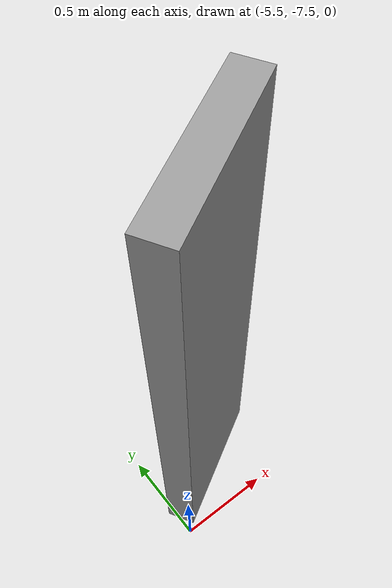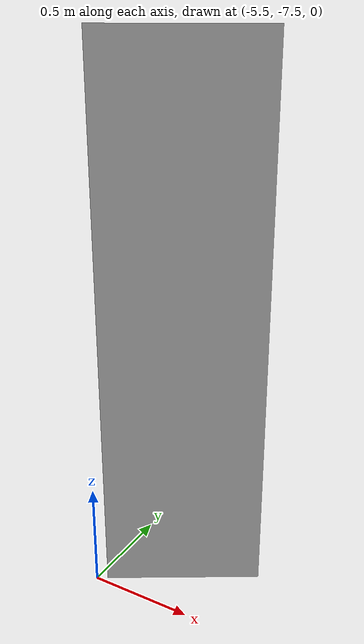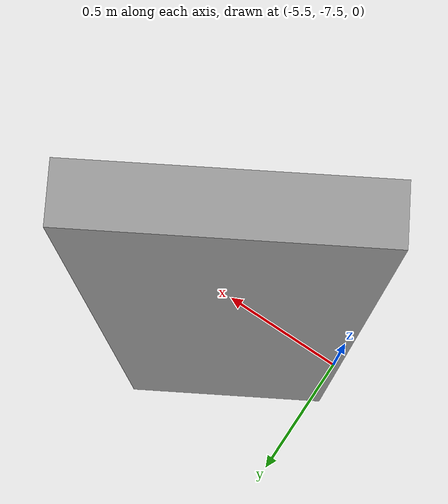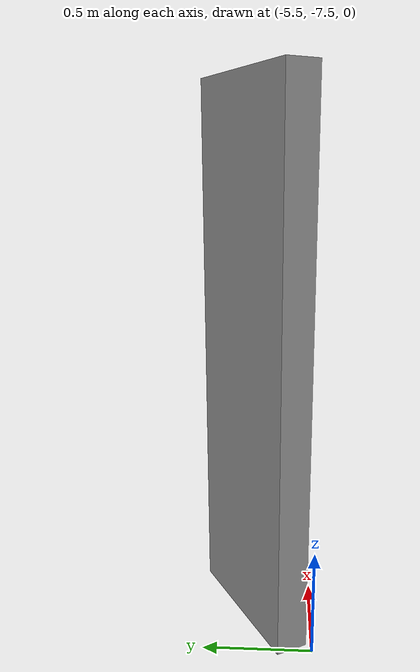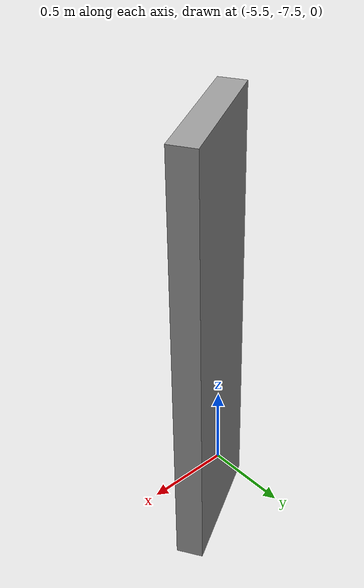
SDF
<?xml version='1.0'?>
<sdf version='1.6'>
  <model name='Untitled'>
    <pose frame=''>-5.16981 -7.22 0 0 -0 0</pose>
    <link name='Wall_4'>
      <collision name='Wall_4_Collision'>
        <geometry>
          <box>
            <size>0.75 0.15 2.5</size>
          </box>
        </geometry>
        <pose frame=''>0 0 1.25 0 -0 0</pose>
      </collision>
      <visual name='Wall_4_Visual'>
        <pose frame=''>0 0 1.25 0 -0 0</pose>
        <geometry>
          <box>
            <size>0.75 0.15 2.5</size>
          </box>
        </geometry>
        <material>
          <script>
            <uri>file://media/materials/scripts/gazebo.material</uri>
            <name>Gazebo/Grey</name>
          </script>
          <ambient>1 1 1 1</ambient>
        </material>
        <meta>
          <layer>0</layer>
        </meta>
      </visual>
      <pose frame=''>0 0 0 0 0 -2.61799</pose>
    </link>
    <static>1</static>
  </model>
</sdf>
